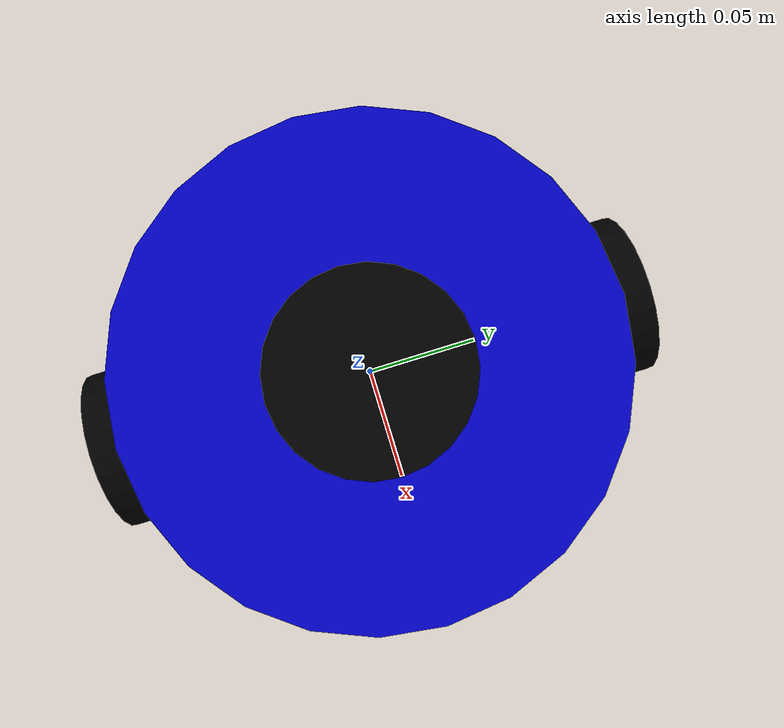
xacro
<?xml version="1.0"?>
<robot xmlns:xacro="http://www.ros.org/wiki/xacro" name="fishbot">

  <!-- 包含基础机器人模型 -->
  <xacro:include filename="$(find fishbot_slam)/urdf/fishbot_base.urdf.xacro"/>

  <!-- Gazebo参考配置 -->
  <gazebo reference="base_link">
    <material>Gazebo/Blue</material>
  </gazebo>

  <gazebo reference="left_wheel_link">
    <material>Gazebo/Black</material>
    <mu1>1.0</mu1>
    <mu2>1.0</mu2>
    <kp>1000000.0</kp>
    <kd>100.0</kd>
    <minDepth>0.001</minDepth>
    <maxVel>1.0</maxVel>
  </gazebo>

  <gazebo reference="right_wheel_link">
    <material>Gazebo/Black</material>
    <mu1>1.0</mu1>
    <mu2>1.0</mu2>
    <kp>1000000.0</kp>
    <kd>100.0</kd>
    <minDepth>0.001</minDepth>
    <maxVel>1.0</maxVel>
  </gazebo>

  <gazebo reference="front_caster_link">
    <material>Gazebo/White</material>
    <mu1>0.1</mu1>
    <mu2>0.1</mu2>
    <kp>1000000.0</kp>
    <kd>100.0</kd>
  </gazebo>

  <gazebo reference="back_caster_link">
    <material>Gazebo/White</material>
    <mu1>0.1</mu1>
    <mu2>0.1</mu2>
    <kp>1000000.0</kp>
    <kd>100.0</kd>
  </gazebo>

  <gazebo reference="laser_link">
    <material>Gazebo/Black</material>
  </gazebo>

  <!-- 激光雷达传感器插件 -->
  <gazebo reference="laser_link">
    <sensor name="laser_sensor" type="ray">
      <pose>0 0 0 0 0 0</pose>
      <visualize>true</visualize>
      <update_rate>10</update_rate>
      <ray>
        <scan>
          <horizontal>
            <samples>360</samples>
            <resolution>1</resolution>
            <min_angle>-3.14159</min_angle>
            <max_angle>3.14159</max_angle>
          </horizontal>
        </scan>
        <range>
          <min>0.12</min>
          <max>12.0</max>
          <resolution>0.01</resolution>
        </range>
        <noise>
          <type>gaussian</type>
          <mean>0.0</mean>
          <stddev>0.01</stddev>
        </noise>
      </ray>
      <plugin name="gazebo_ros_laser" filename="libgazebo_ros_ray_sensor.so">
        <ros>
          <namespace>/</namespace>
          <remapping>~/out:=scan</remapping>
        </ros>
        <output_type>sensor_msgs/LaserScan</output_type>
        <frame_name>laser_link</frame_name>
      </plugin>
    </sensor>
  </gazebo>

  <!-- ROS2 Control插件 -->
  <ros2_control name="fishbot_diff_drive" type="system">
    <hardware>
      <plugin>gazebo_ros2_control/GazeboSystem</plugin>
    </hardware>

    <!-- 左轮关节 -->
    <joint name="left_wheel_joint">
      <command_interface name="velocity">
        <param name="min">-10</param>
        <param name="max">10</param>
      </command_interface>
      <state_interface name="position"/>
      <state_interface name="velocity"/>
    </joint>

    <!-- 右轮关节 -->
    <joint name="right_wheel_joint">
      <command_interface name="velocity">
        <param name="min">-10</param>
        <param name="max">10</param>
      </command_interface>
      <state_interface name="position"/>
      <state_interface name="velocity"/>
    </joint>
  </ros2_control>

  <!-- Gazebo ROS2 Control插件 -->
  <gazebo>
    <plugin filename="libgazebo_ros2_control.so" name="gazebo_ros2_control">
      <parameters>$(find fishbot_slam)/config/diff_drive_controller.yaml</parameters>
    </plugin>
  </gazebo>

</robot>

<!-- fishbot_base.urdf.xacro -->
<robot xmlns:xacro="http://www.ros.org/wiki/xacro" name="fishbot">

  <!-- 定义常量参数 -->
  <xacro:property name="PI" value="3.1415926"/>

  <!-- 底盘参数 -->
  <xacro:property name="base_radius" value="0.1"/>
  <xacro:property name="base_length" value="0.08"/>
  <xacro:property name="base_mass" value="2.0"/>

  <!-- 轮子参数 -->
  <xacro:property name="wheel_radius" value="0.033"/>
  <xacro:property name="wheel_length" value="0.025"/>
  <xacro:property name="wheel_mass" value="0.05"/>

  <!-- 支撑轮参数 -->
  <xacro:property name="caster_radius" value="0.016"/>
  <xacro:property name="caster_mass" value="0.01"/>

  <!-- 雷达参数 -->
  <xacro:property name="lidar_radius" value="0.035"/>
  <xacro:property name="lidar_length" value="0.04"/>
  <xacro:property name="lidar_mass" value="0.15"/>

  <!-- 材质定义 -->
  <material name="white">
    <color rgba="1.0 1.0 1.0 1.0"/>
  </material>
  <material name="black">
    <color rgba="0.0 0.0 0.0 1.0"/>
  </material>
  <material name="blue">
    <color rgba="0.0 0.0 0.8 1.0"/>
  </material>

  <!-- 惯性矩阵宏定义 -->
  <xacro:macro name="cylinder_inertia" params="m r h">
    <inertial>
      <mass value="${m}"/>
      <inertia ixx="${m*(3*r*r+h*h)/12}" ixy="0" ixz="0"
               iyy="${m*(3*r*r+h*h)/12}" iyz="0"
               izz="${m*r*r/2}"/>
    </inertial>
  </xacro:macro>

  <xacro:macro name="sphere_inertia" params="m r">
    <inertial>
      <mass value="${m}"/>
      <inertia ixx="${2*m*r*r/5}" ixy="0" ixz="0"
               iyy="${2*m*r*r/5}" iyz="0"
               izz="${2*m*r*r/5}"/>
    </inertial>
  </xacro:macro>

  <!-- 基础坐标系 base_footprint -->
  <link name="base_footprint">
    <visual>
      <geometry>
        <sphere radius="0.001"/>
      </geometry>
    </visual>
  </link>

  <!-- 底盘链接 base_link -->
  <link name="base_link">
    <visual>
      <geometry>
        <cylinder radius="${base_radius}" length="${base_length}"/>
      </geometry>
      <origin xyz="0 0 0" rpy="0 0 0"/>
      <material name="blue"/>
    </visual>
    <collision>
      <geometry>
        <cylinder radius="${base_radius}" length="${base_length}"/>
      </geometry>
      <origin xyz="0 0 0" rpy="0 0 0"/>
    </collision>
    <xacro:cylinder_inertia m="${base_mass}" r="${base_radius}" h="${base_length}"/>
  </link>

  <!-- base_footprint 到 base_link 关节 -->
  <joint name="base_footprint_to_base_link" type="fixed">
    <parent link="base_footprint"/>
    <child link="base_link"/>
    <origin xyz="0 0 ${wheel_radius}" rpy="0 0 0"/>
  </joint>

  <!-- 轮子宏定义 -->
  <xacro:macro name="wheel_link" params="name">
    <link name="${name}">
      <visual>
        <geometry>
          <cylinder radius="${wheel_radius}" length="${wheel_length}"/>
        </geometry>
        <origin xyz="0 0 0" rpy="${PI/2} 0 0"/>
        <material name="black"/>
      </visual>
      <collision>
        <geometry>
          <cylinder radius="${wheel_radius}" length="${wheel_length}"/>
        </geometry>
        <origin xyz="0 0 0" rpy="${PI/2} 0 0"/>
      </collision>
      <xacro:cylinder_inertia m="${wheel_mass}" r="${wheel_radius}" h="${wheel_length}"/>
    </link>
  </xacro:macro>

  <!-- 左轮 -->
  <xacro:wheel_link name="left_wheel_link"/>
  <joint name="left_wheel_joint" type="continuous">
    <parent link="base_link"/>
    <child link="left_wheel_link"/>
    <origin xyz="0 ${base_radius} 0" rpy="0 0 0"/>
    <axis xyz="0 1 0"/>
  </joint>

  <!-- 右轮 -->
  <xacro:wheel_link name="right_wheel_link"/>
  <joint name="right_wheel_joint" type="continuous">
    <parent link="base_link"/>
    <child link="right_wheel_link"/>
    <origin xyz="0 ${-base_radius} 0" rpy="0 0 0"/>
    <axis xyz="0 1 0"/>
  </joint>

  <!-- 前支撑轮 -->
  <link name="front_caster_link">
    <visual>
      <geometry>
        <sphere radius="${caster_radius}"/>
      </geometry>
      <origin xyz="0 0 0" rpy="0 0 0"/>
      <material name="white"/>
    </visual>
    <collision>
      <geometry>
        <sphere radius="${caster_radius}"/>
      </geometry>
      <origin xyz="0 0 0" rpy="0 0 0"/>
    </collision>
    <xacro:sphere_inertia m="${caster_mass}" r="${caster_radius}"/>
  </link>

  <joint name="front_caster_joint" type="fixed">
    <parent link="base_link"/>
    <child link="front_caster_link"/>
    <origin xyz="${base_radius*0.6} 0 ${-(wheel_radius-caster_radius)}" rpy="0 0 0"/>
  </joint>

  <!-- 后支撑轮 -->
  <link name="back_caster_link">
    <visual>
      <geometry>
        <sphere radius="${caster_radius}"/>
      </geometry>
      <origin xyz="0 0 0" rpy="0 0 0"/>
      <material name="white"/>
    </visual>
    <collision>
      <geometry>
        <sphere radius="${caster_radius}"/>
      </geometry>
      <origin xyz="0 0 0" rpy="0 0 0"/>
    </collision>
    <xacro:sphere_inertia m="${caster_mass}" r="${caster_radius}"/>
  </link>

  <joint name="back_caster_joint" type="fixed">
    <parent link="base_link"/>
    <child link="back_caster_link"/>
    <origin xyz="${-base_radius*0.6} 0 ${-(wheel_radius-caster_radius)}" rpy="0 0 0"/>
  </joint>

  <!-- 激光雷达链接 -->
  <link name="laser_link">
    <visual>
      <geometry>
        <cylinder radius="${lidar_radius}" length="${lidar_length}"/>
      </geometry>
      <origin xyz="0 0 0" rpy="0 0 0"/>
      <material name="black"/>
    </visual>
    <collision>
      <geometry>
        <cylinder radius="${lidar_radius}" length="${lidar_length}"/>
      </geometry>
      <origin xyz="0 0 0" rpy="0 0 0"/>
    </collision>
    <xacro:cylinder_inertia m="${lidar_mass}" r="${lidar_radius}" h="${lidar_length}"/>
  </link>

  <joint name="laser_joint" type="fixed">
    <parent link="base_link"/>
    <child link="laser_link"/>
    <origin xyz="0 0 ${base_length/2 + lidar_length/2 + 0.01}" rpy="0 0 0"/>
  </joint>

</robot>
